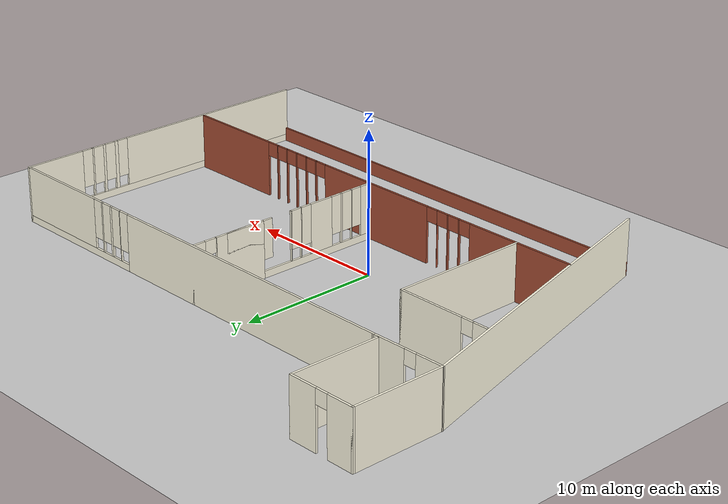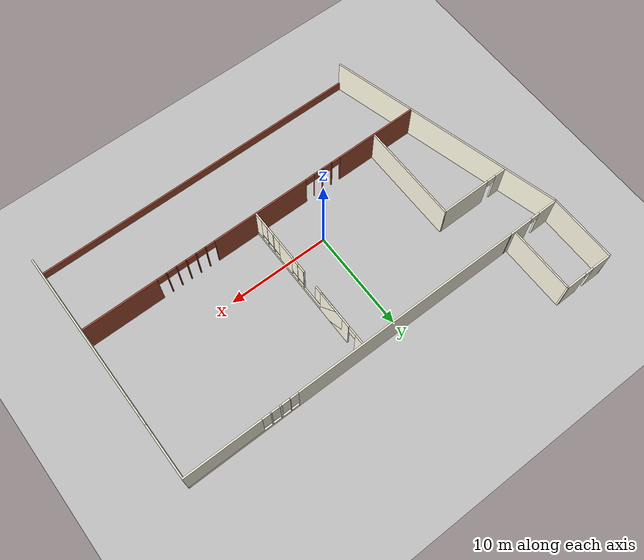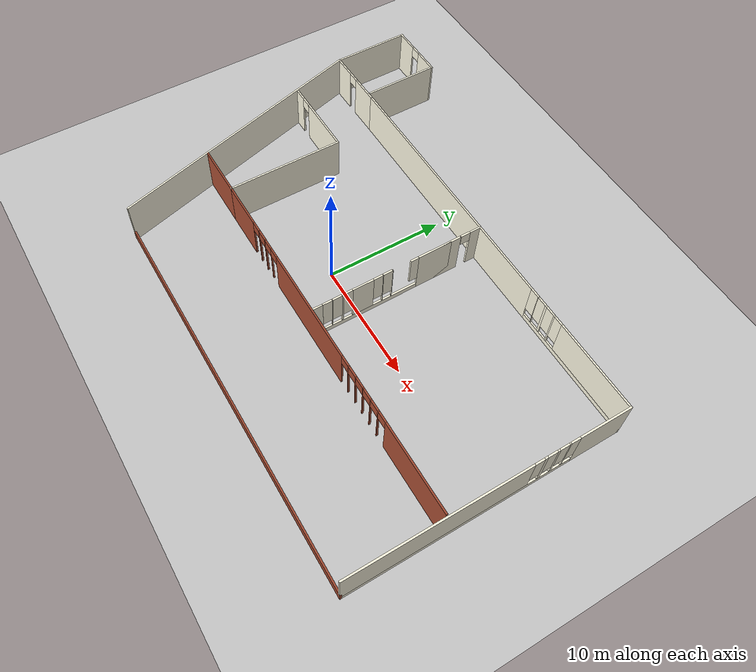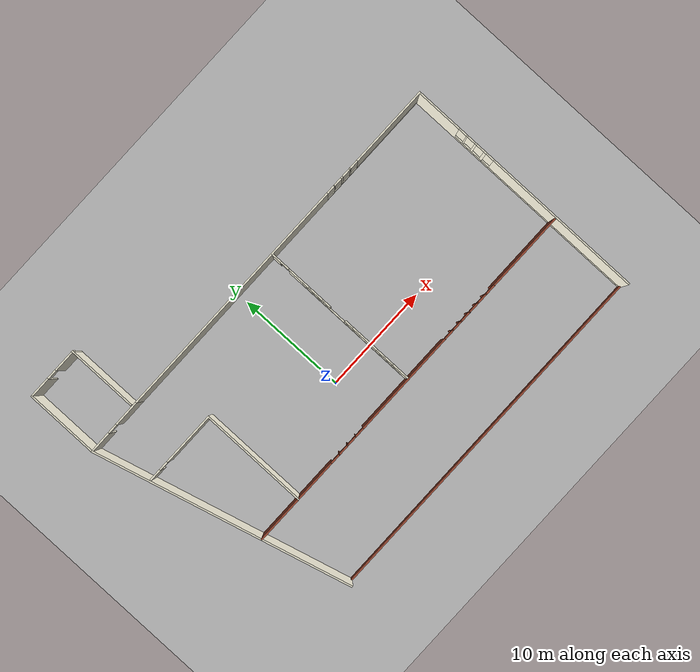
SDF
<sdf version="1.6">
 <world name="default">
  <model name="ground_plane">
   <static>1</static>
   <link name="link">
    <collision name="collision">
     <geometry><plane><normal>0 0 1</normal><size>100 100</size></plane></geometry>
     <surface><friction><ode><mu>100</mu><mu2>50</mu2></ode></friction></surface>
    </collision>
    <visual name="visual">
     <cast_shadows>0</cast_shadows>
     <geometry><plane><normal>0 0 1</normal><size>100 100</size></plane></geometry>
     <material>
      <script><uri>file://media/materials/scripts/gazebo.material</uri><name>Gazebo/Grey</name></script>
     </material>
    </visual>
   </link>
  </model>
  <model name="myoffice">
   <pose>2.27474 2.6943 0.029402 0 -0 0</pose>
   <link name="Wall_0">
    <pose>2.68742 8.1604 0 0 -0 0</pose>
    <visual name="Wall_0_Visual_0">
     <pose>-5.55834 0 2 0 -0 0</pose>
     <geometry><box><size>22.8833 0.15 4</size></box></geometry>
     <material>
      <script><uri>file://media/materials/scripts/gazebo.material</uri><name>Gazebo/Grey</name></script>
      <ambient>1 0.980392 0.894118 1</ambient>
     </material>
     <meta><layer>0</layer></meta>
    </visual>
    <collision name="Wall_0_Collision_0">
     <geometry><box><size>22.8833 0.15 4</size></box></geometry>
     <pose>-5.55834 0 2 0 -0 0</pose>
    </collision>
    <visual name="Wall_0_Visual_1">
     <pose>11.4417 0 0.25 0 -0 0</pose>
     <geometry><box><size>11.1167 0.15 0.5</size></box></geometry>
     <material>
      <script><uri>file://media/materials/scripts/gazebo.material</uri><name>Gazebo/Grey</name></script>
      <ambient>1 0.980392 0.894118 1</ambient>
     </material>
     <meta><layer>0</layer></meta>
    </visual>
    <collision name="Wall_0_Collision_1">
     <geometry><box><size>11.1167 0.15 0.5</size></box></geometry>
     <pose>11.4417 0 0.25 0 -0 0</pose>
    </collision>
    <visual name="Wall_0_Visual_2">
     <pose>6.70786 0 2.25 0 -0 0</pose>
     <geometry><box><size>0.049085 0.15 3.5</size></box></geometry>
     <material>
      <script><uri>file://media/materials/scripts/gazebo.material</uri><name>Gazebo/Grey</name></script>
      <ambient>1 0.980392 0.894118 1</ambient>
     </material>
     <meta><layer>0</layer></meta>
    </visual>
    <collision name="Wall_0_Collision_2">
     <geometry><box><size>0.049085 0.15 3.5</size></box></geometry>
     <pose>6.70786 0 2.25 0 -0 0</pose>
    </collision>
    <visual name="Wall_0_Visual_3">
     <pose>7.6277 0 2.25 0 -0 0</pose>
     <geometry><box><size>0.190599 0.15 3.5</size></box></geometry>
     <material>
      <script><uri>file://media/materials/scripts/gazebo.material</uri><name>Gazebo/Grey</name></script>
      <ambient>1 0.980392 0.894118 1</ambient>
     </material>
     <meta><layer>0</layer></meta>
    </visual>
    <collision name="Wall_0_Collision_3">
     <geometry><box><size>0.190599 0.15 3.5</size></box></geometry>
     <pose>7.6277 0 2.25 0 -0 0</pose>
    </collision>
    <visual name="Wall_0_Visual_4">
     <pose>8.58292 0 2.25 0 -0 0</pose>
     <geometry><box><size>0.119842 0.15 3.5</size></box></geometry>
     <material>
      <script><uri>file://media/materials/scripts/gazebo.material</uri><name>Gazebo/Grey</name></script>
      <ambient>1 0.980392 0.894118 1</ambient>
     </material>
     <meta><layer>0</layer></meta>
    </visual>
    <collision name="Wall_0_Collision_4">
     <geometry><box><size>0.119842 0.15 3.5</size></box></geometry>
     <pose>8.58292 0 2.25 0 -0 0</pose>
    </collision>
    <visual name="Wall_0_Visual_5">
     <pose>13.2214 0 2.25 0 -0 0</pose>
     <geometry><box><size>7.55716 0.15 3.5</size></box></geometry>
     <material>
      <script><uri>file://media/materials/scripts/gazebo.material</uri><name>Gazebo/Grey</name></script>
      <ambient>1 0.980392 0.894118 1</ambient>
     </material>
     <meta><layer>0</layer></meta>
    </visual>
    <collision name="Wall_0_Collision_5">
     <geometry><box><size>7.55716 0.15 3.5</size></box></geometry>
     <pose>13.2214 0 2.25 0 -0 0</pose>
    </collision>
    <visual name="Wall_0_Visual_6">
     <pose>6.28331 0 2.65 0 -0 0</pose>
     <geometry><box><size>0.8 0.15 2.7</size></box></geometry>
     <material>
      <script><uri>file://media/materials/scripts/gazebo.material</uri><name>Gazebo/Grey</name></script>
      <ambient>1 0.980392 0.894118 1</ambient>
     </material>
     <meta><layer>0</layer></meta>
    </visual>
    <collision name="Wall_0_Collision_6">
     <geometry><box><size>0.8 0.15 2.7</size></box></geometry>
     <pose>6.28331 0 2.65 0 -0 0</pose>
    </collision>
    <visual name="Wall_0_Visual_7">
     <pose>7.1324 0 2.65 0 -0 0</pose>
     <geometry><box><size>0.8 0.15 2.7</size></box></geometry>
     <material>
      <script><uri>file://media/materials/scripts/gazebo.material</uri><name>Gazebo/Grey</name></script>
      <ambient>1 0.980392 0.894118 1</ambient>
     </material>
     <meta><layer>0</layer></meta>
    </visual>
    <collision name="Wall_0_Collision_7">
     <geometry><box><size>0.8 0.15 2.7</size></box></geometry>
     <pose>7.1324 0 2.65 0 -0 0</pose>
    </collision>
    <visual name="Wall_0_Visual_8">
     <pose>8.123 0 2.65 0 -0 0</pose>
     <geometry><box><size>0.8 0.15 2.7</size></box></geometry>
     <material>
      <script><uri>file://media/materials/scripts/gazebo.material</uri><name>Gazebo/Grey</name></script>
      <ambient>1 0.980392 0.894118 1</ambient>
     </material>
     <meta><layer>0</layer></meta>
    </visual>
    <collision name="Wall_0_Collision_8">
     <geometry><box><size>0.8 0.15 2.7</size></box></geometry>
     <pose>8.123 0 2.65 0 -0 0</pose>
    </collision>
    <visual name="Wall_0_Visual_9">
     <pose>9.04284 0 2.65 0 -0 0</pose>
     <geometry><box><size>0.8 0.15 2.7</size></box></geometry>
     <material>
      <script><uri>file://media/materials/scripts/gazebo.material</uri><name>Gazebo/Grey</name></script>
      <ambient>1 0.980392 0.894118 1</ambient>
     </material>
     <meta><layer>0</layer></meta>
    </visual>
    <collision name="Wall_0_Collision_9">
     <geometry><box><size>0.8 0.15 2.7</size></box></geometry>
     <pose>9.04284 0 2.65 0 -0 0</pose>
    </collision>
   </link>
   <link name="Wall_1">
    <pose>19.6124 -3.2646 0 0 0 -1.5708</pose>
    <visual name="Wall_1_Visual_0">
     <pose>-9.29214 0 2 0 -0 0</pose>
     <geometry><box><size>4.41572 0.15 4</size></box></geometry>
     <material>
      <script><uri>file://media/materials/scripts/gazebo.material</uri><name>Gazebo/Grey</name></script>
      <ambient>1 0.980392 0.894118 1</ambient>
     </material>
     <meta><layer>0</layer></meta>
    </visual>
    <collision name="Wall_1_Collision_0">
     <geometry><box><size>4.41572 0.15 4</size></box></geometry>
     <pose>-9.29214 0 2 0 -0 0</pose>
    </collision>
    <visual name="Wall_1_Visual_1">
     <pose>2.20786 0 0.25 0 -0 0</pose>
     <geometry><box><size>18.5843 0.15 0.5</size></box></geometry>
     <material>
      <script><uri>file://media/materials/scripts/gazebo.material</uri><name>Gazebo/Grey</name></script>
      <ambient>1 0.980392 0.894118 1</ambient>
     </material>
     <meta><layer>0</layer></meta>
    </visual>
    <collision name="Wall_1_Collision_1">
     <geometry><box><size>18.5843 0.15 0.5</size></box></geometry>
     <pose>2.20786 0 0.25 0 -0 0</pose>
    </collision>
    <visual name="Wall_1_Visual_2">
     <pose>-6.22436 0 2.25 0 -0 0</pose>
     <geometry><box><size>0.119842 0.15 3.5</size></box></geometry>
     <material>
      <script><uri>file://media/materials/scripts/gazebo.material</uri><name>Gazebo/Grey</name></script>
      <ambient>1 0.980392 0.894118 1</ambient>
     </material>
     <meta><layer>0</layer></meta>
    </visual>
    <collision name="Wall_1_Collision_2">
     <geometry><box><size>0.119842 0.15 3.5</size></box></geometry>
     <pose>-6.22436 0 2.25 0 -0 0</pose>
    </collision>
    <visual name="Wall_1_Visual_3">
     <pose>-5.26914 0 2.25 0 -0 0</pose>
     <geometry><box><size>0.190599 0.15 3.5</size></box></geometry>
     <material>
      <script><uri>file://media/materials/scripts/gazebo.material</uri><name>Gazebo/Grey</name></script>
      <ambient>1 0.980392 0.894118 1</ambient>
     </material>
     <meta><layer>0</layer></meta>
    </visual>
    <collision name="Wall_1_Collision_3">
     <geometry><box><size>0.190599 0.15 3.5</size></box></geometry>
     <pose>-5.26914 0 2.25 0 -0 0</pose>
    </collision>
    <visual name="Wall_1_Visual_4">
     <pose>-4.24316 0 2.25 0 -0 0</pose>
     <geometry><box><size>0.261356 0.15 3.5</size></box></geometry>
     <material>
      <script><uri>file://media/materials/scripts/gazebo.material</uri><name>Gazebo/Grey</name></script>
      <ambient>1 0.980392 0.894118 1</ambient>
     </material>
     <meta><layer>0</layer></meta>
    </visual>
    <collision name="Wall_1_Collision_4">
     <geometry><box><size>0.261356 0.15 3.5</size></box></geometry>
     <pose>-4.24316 0 2.25 0 -0 0</pose>
    </collision>
    <visual name="Wall_1_Visual_5">
     <pose>4.09376 0 2.25 0 -0 0</pose>
     <geometry><box><size>14.8125 0.15 3.5</size></box></geometry>
     <material>
      <script><uri>file://media/materials/scripts/gazebo.material</uri><name>Gazebo/Grey</name></script>
      <ambient>1 0.980392 0.894118 1</ambient>
     </material>
     <meta><layer>0</layer></meta>
    </visual>
    <collision name="Wall_1_Collision_5">
     <geometry><box><size>14.8125 0.15 3.5</size></box></geometry>
     <pose>4.09376 0 2.25 0 -0 0</pose>
    </collision>
    <visual name="Wall_1_Visual_6">
     <pose>-6.68428 0 2.65 0 -0 0</pose>
     <geometry><box><size>0.8 0.15 2.7</size></box></geometry>
     <material>
      <script><uri>file://media/materials/scripts/gazebo.material</uri><name>Gazebo/Grey</name></script>
      <ambient>1 0.980392 0.894118 1</ambient>
     </material>
     <meta><layer>0</layer></meta>
    </visual>
    <collision name="Wall_1_Collision_6">
     <geometry><box><size>0.8 0.15 2.7</size></box></geometry>
     <pose>-6.68428 0 2.65 0 -0 0</pose>
    </collision>
    <visual name="Wall_1_Visual_7">
     <pose>-5.76444 0 2.65 0 -0 0</pose>
     <geometry><box><size>0.8 0.15 2.7</size></box></geometry>
     <material>
      <script><uri>file://media/materials/scripts/gazebo.material</uri><name>Gazebo/Grey</name></script>
      <ambient>1 0.980392 0.894118 1</ambient>
     </material>
     <meta><layer>0</layer></meta>
    </visual>
    <collision name="Wall_1_Collision_7">
     <geometry><box><size>0.8 0.15 2.7</size></box></geometry>
     <pose>-5.76444 0 2.65 0 -0 0</pose>
    </collision>
    <visual name="Wall_1_Visual_8">
     <pose>-4.77384 0 2.65 0 -0 0</pose>
     <geometry><box><size>0.8 0.15 2.7</size></box></geometry>
     <material>
      <script><uri>file://media/materials/scripts/gazebo.material</uri><name>Gazebo/Grey</name></script>
      <ambient>1 0.980392 0.894118 1</ambient>
     </material>
     <meta><layer>0</layer></meta>
    </visual>
    <collision name="Wall_1_Collision_8">
     <geometry><box><size>0.8 0.15 2.7</size></box></geometry>
     <pose>-4.77384 0 2.65 0 -0 0</pose>
    </collision>
    <visual name="Wall_1_Visual_9">
     <pose>-3.71248 0 2.65 0 -0 0</pose>
     <geometry><box><size>0.8 0.15 2.7</size></box></geometry>
     <material>
      <script><uri>file://media/materials/scripts/gazebo.material</uri><name>Gazebo/Grey</name></script>
      <ambient>1 0.980392 0.894118 1</ambient>
     </material>
     <meta><layer>0</layer></meta>
    </visual>
    <collision name="Wall_1_Collision_9">
     <geometry><box><size>0.8 0.15 2.7</size></box></geometry>
     <pose>-3.71248 0 2.65 0 -0 0</pose>
    </collision>
   </link>
   <link name="Wall_11">
    <pose>-14.6336 3.0664 0 0 -0 0</pose>
    <visual name="Wall_11_Visual_0">
     <pose>-2.94452 0 2 0 -0 0</pose>
     <geometry><box><size>1.11096 0.15 4</size></box></geometry>
     <material>
      <script><uri>file://media/materials/scripts/gazebo.material</uri><name>Gazebo/Grey</name></script>
      <ambient>1 0.980392 0.894118 1</ambient>
     </material>
     <meta><layer>0</layer></meta>
    </visual>
    <collision name="Wall_11_Collision_0">
     <geometry><box><size>1.11096 0.15 4</size></box></geometry>
     <pose>-2.94452 0 2 0 -0 0</pose>
    </collision>
    <visual name="Wall_11_Visual_1">
     <pose>1.00548 0 2 0 -0 0</pose>
     <geometry><box><size>4.98904 0.15 4</size></box></geometry>
     <material>
      <script><uri>file://media/materials/scripts/gazebo.material</uri><name>Gazebo/Grey</name></script>
      <ambient>1 0.980392 0.894118 1</ambient>
     </material>
     <meta><layer>0</layer></meta>
    </visual>
    <collision name="Wall_11_Collision_1">
     <geometry><box><size>4.98904 0.15 4</size></box></geometry>
     <pose>1.00548 0 2 0 -0 0</pose>
    </collision>
    <visual name="Wall_11_Visual_2">
     <pose>-1.93904 0 3.5 0 -0 0</pose>
     <geometry><box><size>0.9 0.15 1</size></box></geometry>
     <material>
      <script><uri>file://media/materials/scripts/gazebo.material</uri><name>Gazebo/Grey</name></script>
      <ambient>1 0.980392 0.894118 1</ambient>
     </material>
     <meta><layer>0</layer></meta>
    </visual>
    <collision name="Wall_11_Collision_2">
     <geometry><box><size>0.9 0.15 1</size></box></geometry>
     <pose>-1.93904 0 3.5 0 -0 0</pose>
    </collision>
   </link>
   <link name="Wall_12">
    <collision name="Wall_12_Collision">
     <geometry><box><size>10 0.15 4</size></box></geometry>
     <pose>0 0 2 0 -0 0</pose>
    </collision>
    <visual name="Wall_12_Visual">
     <pose>0 0 2 0 -0 0</pose>
     <geometry><box><size>10 0.15 4</size></box></geometry>
     <material>
      <script><uri>file://media/materials/scripts/gazebo.material</uri><name>Gazebo/Grey</name></script>
      <ambient>1 0.980392 0.894118 1</ambient>
     </material>
     <meta><layer>0</layer></meta>
    </visual>
    <pose>-11.2086 -1.8586 0 0 0 -1.5708</pose>
   </link>
   <link name="Wall_13">
    <collision name="Wall_13_Collision">
     <geometry><box><size>4.5 0.15 4</size></box></geometry>
     <pose>0 0 2 0 -0 0</pose>
    </collision>
    <visual name="Wall_13_Visual">
     <pose>0 0 2 0 -0 0</pose>
     <geometry><box><size>4.5 0.15 4</size></box></geometry>
     <material>
      <script><uri>file://media/materials/scripts/gazebo.material</uri><name>Gazebo/Bricks</name></script>
      <ambient>1 0.980392 0.894118 1</ambient>
     </material>
     <meta><layer>0</layer></meta>
    </visual>
    <pose>-13.3836 -6.7836 0 0 -0 3.14159</pose>
   </link>
   <link name="Wall_15">
    <pose>4.09142 -6.7836 0 0 -0 0</pose>
    <visual name="Wall_15_Visual_0">
     <pose>-13.3623 0 2 0 -0 0</pose>
     <geometry><box><size>4.02537 0.15 4</size></box></geometry>
     <material>
      <script><uri>file://media/materials/scripts/gazebo.material</uri><name>Gazebo/Bricks</name></script>
      <ambient>1 0.980392 0.894118 1</ambient>
     </material>
     <meta><layer>0</layer></meta>
    </visual>
    <collision name="Wall_15_Collision_0">
     <geometry><box><size>4.02537 0.15 4</size></box></geometry>
     <pose>-13.3623 0 2 0 -0 0</pose>
    </collision>
    <visual name="Wall_15_Visual_1">
     <pose>-10.4043 0 2 0 -0 0</pose>
     <geometry><box><size>0.090664 0.15 4</size></box></geometry>
     <material>
      <script><uri>file://media/materials/scripts/gazebo.material</uri><name>Gazebo/Bricks</name></script>
      <ambient>1 0.980392 0.894118 1</ambient>
     </material>
     <meta><layer>0</layer></meta>
    </visual>
    <collision name="Wall_15_Collision_1">
     <geometry><box><size>0.090664 0.15 4</size></box></geometry>
     <pose>-10.4043 0 2 0 -0 0</pose>
    </collision>
    <visual name="Wall_15_Visual_2">
     <pose>-9.4137 0 2 0 -0 0</pose>
     <geometry><box><size>0.090534 0.15 4</size></box></geometry>
     <material>
      <script><uri>file://media/materials/scripts/gazebo.material</uri><name>Gazebo/Bricks</name></script>
      <ambient>1 0.980392 0.894118 1</ambient>
     </material>
     <meta><layer>0</layer></meta>
    </visual>
    <collision name="Wall_15_Collision_2">
     <geometry><box><size>0.090534 0.15 4</size></box></geometry>
     <pose>-9.4137 0 2 0 -0 0</pose>
    </collision>
    <visual name="Wall_15_Visual_3">
     <pose>-8.45851 0 2 0 -0 0</pose>
     <geometry><box><size>0.019842 0.15 4</size></box></geometry>
     <material>
      <script><uri>file://media/materials/scripts/gazebo.material</uri><name>Gazebo/Bricks</name></script>
      <ambient>1 0.980392 0.894118 1</ambient>
     </material>
     <meta><layer>0</layer></meta>
    </visual>
    <collision name="Wall_15_Collision_3">
     <geometry><box><size>0.019842 0.15 4</size></box></geometry>
     <pose>-8.45851 0 2 0 -0 0</pose>
    </collision>
    <visual name="Wall_15_Visual_4">
     <pose>-2.65643 0 2 0 -0 0</pose>
     <geometry><box><size>9.78432 0.15 4</size></box></geometry>
     <material>
      <script><uri>file://media/materials/scripts/gazebo.material</uri><name>Gazebo/Bricks</name></script>
      <ambient>1 0.980392 0.894118 1</ambient>
     </material>
     <meta><layer>0</layer></meta>
    </visual>
    <collision name="Wall_15_Collision_4">
     <geometry><box><size>9.78432 0.15 4</size></box></geometry>
     <pose>-2.65643 0 2 0 -0 0</pose>
    </collision>
    <visual name="Wall_15_Visual_5">
     <pose>3.18107 0 2 0 -0 0</pose>
     <geometry><box><size>0.090681 0.15 4</size></box></geometry>
     <material>
      <script><uri>file://media/materials/scripts/gazebo.material</uri><name>Gazebo/Bricks</name></script>
      <ambient>1 0.980392 0.894118 1</ambient>
     </material>
     <meta><layer>0</layer></meta>
    </visual>
    <collision name="Wall_15_Collision_5">
     <geometry><box><size>0.090681 0.15 4</size></box></geometry>
     <pose>3.18107 0 2 0 -0 0</pose>
    </collision>
    <visual name="Wall_15_Visual_6">
     <pose>4.17167 0 2 0 -0 0</pose>
     <geometry><box><size>0.090516 0.15 4</size></box></geometry>
     <material>
      <script><uri>file://media/materials/scripts/gazebo.material</uri><name>Gazebo/Bricks</name></script>
      <ambient>1 0.980392 0.894118 1</ambient>
     </material>
     <meta><layer>0</layer></meta>
    </visual>
    <collision name="Wall_15_Collision_6">
     <geometry><box><size>0.090516 0.15 4</size></box></geometry>
     <pose>4.17167 0 2 0 -0 0</pose>
    </collision>
    <visual name="Wall_15_Visual_7">
     <pose>5.16222 0 2 0 -0 0</pose>
     <geometry><box><size>0.090599 0.15 4</size></box></geometry>
     <material>
      <script><uri>file://media/materials/scripts/gazebo.material</uri><name>Gazebo/Bricks</name></script>
      <ambient>1 0.980392 0.894118 1</ambient>
     </material>
     <meta><layer>0</layer></meta>
    </visual>
    <collision name="Wall_15_Collision_7">
     <geometry><box><size>0.090599 0.15 4</size></box></geometry>
     <pose>5.16222 0 2 0 -0 0</pose>
    </collision>
    <visual name="Wall_15_Visual_8">
     <pose>6.15282 0 2 0 -0 0</pose>
     <geometry><box><size>0.090599 0.15 4</size></box></geometry>
     <material>
      <script><uri>file://media/materials/scripts/gazebo.material</uri><name>Gazebo/Bricks</name></script>
      <ambient>1 0.980392 0.894118 1</ambient>
     </material>
     <meta><layer>0</layer></meta>
    </visual>
    <collision name="Wall_15_Collision_8">
     <geometry><box><size>0.090599 0.15 4</size></box></geometry>
     <pose>6.15282 0 2 0 -0 0</pose>
    </collision>
    <visual name="Wall_15_Visual_9">
     <pose>7.14342 0 2 0 -0 0</pose>
     <geometry><box><size>0.090599 0.15 4</size></box></geometry>
     <material>
      <script><uri>file://media/materials/scripts/gazebo.material</uri><name>Gazebo/Bricks</name></script>
      <ambient>1 0.980392 0.894118 1</ambient>
     </material>
     <meta><layer>0</layer></meta>
    </visual>
    <collision name="Wall_15_Collision_9">
     <geometry><box><size>0.090599 0.15 4</size></box></geometry>
     <pose>7.14342 0 2 0 -0 0</pose>
    </collision>
    <visual name="Wall_15_Visual_10">
     <pose>11.7319 0 2 0 -0 0</pose>
     <geometry><box><size>7.28628 0.15 4</size></box></geometry>
     <material>
      <script><uri>file://media/materials/scripts/gazebo.material</uri><name>Gazebo/Bricks</name></script>
      <ambient>1 0.980392 0.894118 1</ambient>
     </material>
     <meta><layer>0</layer></meta>
    </visual>
    <collision name="Wall_15_Collision_10">
     <geometry><box><size>7.28628 0.15 4</size></box></geometry>
     <pose>11.7319 0 2 0 -0 0</pose>
    </collision>
    <visual name="Wall_15_Visual_11">
     <pose>-10.8996 0 3.5 0 -0 0</pose>
     <geometry><box><size>0.9 0.15 1</size></box></geometry>
     <material>
      <script><uri>file://media/materials/scripts/gazebo.material</uri><name>Gazebo/Bricks</name></script>
      <ambient>1 0.980392 0.894118 1</ambient>
     </material>
     <meta><layer>0</layer></meta>
    </visual>
    <collision name="Wall_15_Collision_11">
     <geometry><box><size>0.9 0.15 1</size></box></geometry>
     <pose>-10.8996 0 3.5 0 -0 0</pose>
    </collision>
    <visual name="Wall_15_Visual_12">
     <pose>-9.90897 0 3.5 0 -0 0</pose>
     <geometry><box><size>0.9 0.15 1</size></box></geometry>
     <material>
      <script><uri>file://media/materials/scripts/gazebo.material</uri><name>Gazebo/Bricks</name></script>
      <ambient>1 0.980392 0.894118 1</ambient>
     </material>
     <meta><layer>0</layer></meta>
    </visual>
    <collision name="Wall_15_Collision_12">
     <geometry><box><size>0.9 0.15 1</size></box></geometry>
     <pose>-9.90897 0 3.5 0 -0 0</pose>
    </collision>
    <visual name="Wall_15_Visual_13">
     <pose>-8.91843 0 3.5 0 -0 0</pose>
     <geometry><box><size>0.9 0.15 1</size></box></geometry>
     <material>
      <script><uri>file://media/materials/scripts/gazebo.material</uri><name>Gazebo/Bricks</name></script>
      <ambient>1 0.980392 0.894118 1</ambient>
     </material>
     <meta><layer>0</layer></meta>
    </visual>
    <collision name="Wall_15_Collision_13">
     <geometry><box><size>0.9 0.15 1</size></box></geometry>
     <pose>-8.91843 0 3.5 0 -0 0</pose>
    </collision>
    <visual name="Wall_15_Visual_14">
     <pose>-7.99859 0 3.5 0 -0 0</pose>
     <geometry><box><size>0.9 0.15 1</size></box></geometry>
     <material>
      <script><uri>file://media/materials/scripts/gazebo.material</uri><name>Gazebo/Bricks</name></script>
      <ambient>1 0.980392 0.894118 1</ambient>
     </material>
     <meta><layer>0</layer></meta>
    </visual>
    <collision name="Wall_15_Collision_14">
     <geometry><box><size>0.9 0.15 1</size></box></geometry>
     <pose>-7.99859 0 3.5 0 -0 0</pose>
    </collision>
    <visual name="Wall_15_Visual_15">
     <pose>2.68573 0 3.5 0 -0 0</pose>
     <geometry><box><size>0.9 0.15 1</size></box></geometry>
     <material>
      <script><uri>file://media/materials/scripts/gazebo.material</uri><name>Gazebo/Bricks</name></script>
      <ambient>1 0.980392 0.894118 1</ambient>
     </material>
     <meta><layer>0</layer></meta>
    </visual>
    <collision name="Wall_15_Collision_15">
     <geometry><box><size>0.9 0.15 1</size></box></geometry>
     <pose>2.68573 0 3.5 0 -0 0</pose>
    </collision>
    <visual name="Wall_15_Visual_16">
     <pose>3.67641 0 3.5 0 -0 0</pose>
     <geometry><box><size>0.9 0.15 1</size></box></geometry>
     <material>
      <script><uri>file://media/materials/scripts/gazebo.material</uri><name>Gazebo/Bricks</name></script>
      <ambient>1 0.980392 0.894118 1</ambient>
     </material>
     <meta><layer>0</layer></meta>
    </visual>
    <collision name="Wall_15_Collision_16">
     <geometry><box><size>0.9 0.15 1</size></box></geometry>
     <pose>3.67641 0 3.5 0 -0 0</pose>
    </collision>
    <visual name="Wall_15_Visual_17">
     <pose>4.66692 0 3.5 0 -0 0</pose>
     <geometry><box><size>0.9 0.15 1</size></box></geometry>
     <material>
      <script><uri>file://media/materials/scripts/gazebo.material</uri><name>Gazebo/Bricks</name></script>
      <ambient>1 0.980392 0.894118 1</ambient>
     </material>
     <meta><layer>0</layer></meta>
    </visual>
    <collision name="Wall_15_Collision_17">
     <geometry><box><size>0.9 0.15 1</size></box></geometry>
     <pose>4.66692 0 3.5 0 -0 0</pose>
    </collision>
    <visual name="Wall_15_Visual_18">
     <pose>5.65752 0 3.5 0 -0 0</pose>
     <geometry><box><size>0.9 0.15 1</size></box></geometry>
     <material>
      <script><uri>file://media/materials/scripts/gazebo.material</uri><name>Gazebo/Bricks</name></script>
      <ambient>1 0.980392 0.894118 1</ambient>
     </material>
     <meta><layer>0</layer></meta>
    </visual>
    <collision name="Wall_15_Collision_18">
     <geometry><box><size>0.9 0.15 1</size></box></geometry>
     <pose>5.65752 0 3.5 0 -0 0</pose>
    </collision>
    <visual name="Wall_15_Visual_19">
     <pose>6.64812 0 3.5 0 -0 0</pose>
     <geometry><box><size>0.9 0.15 1</size></box></geometry>
     <material>
      <script><uri>file://media/materials/scripts/gazebo.material</uri><name>Gazebo/Bricks</name></script>
      <ambient>1 0.980392 0.894118 1</ambient>
     </material>
     <meta><layer>0</layer></meta>
    </visual>
    <collision name="Wall_15_Collision_19">
     <geometry><box><size>0.9 0.15 1</size></box></geometry>
     <pose>6.64812 0 3.5 0 -0 0</pose>
    </collision>
    <visual name="Wall_15_Visual_20">
     <pose>7.63872 0 3.5 0 -0 0</pose>
     <geometry><box><size>0.9 0.15 1</size></box></geometry>
     <material>
      <script><uri>file://media/materials/scripts/gazebo.material</uri><name>Gazebo/Bricks</name></script>
      <ambient>1 0.980392 0.894118 1</ambient>
     </material>
     <meta><layer>0</layer></meta>
    </visual>
    <collision name="Wall_15_Collision_20">
     <geometry><box><size>0.9 0.15 1</size></box></geometry>
     <pose>7.63872 0 3.5 0 -0 0</pose>
    </collision>
   </link>
   <link name="Wall_17">
    <pose>1.96542 0.7354 0 0 0 -1.5708</pose>
    <visual name="Wall_17_Visual_0">
     <pose>-6.97993 0 2 0 -0 0</pose>
     <geometry><box><size>1.04014 0.15 4</size></box></geometry>
     <material>
      <script><uri>file://media/materials/scripts/gazebo.material</uri><name>Gazebo/Grey</name></script>
      <ambient>1 0.980392 0.894118 1</ambient>
     </material>
     <meta><layer>0</layer></meta>
    </visual>
    <collision name="Wall_17_Collision_0">
     <geometry><box><size>1.04014 0.15 4</size></box></geometry>
     <pose>-6.97993 0 2 0 -0 0</pose>
    </collision>
    <visual name="Wall_17_Visual_1">
     <pose>-3.64988 0 2 0 -0 0</pose>
     <geometry><box><size>3.81997 0.15 4</size></box></geometry>
     <material>
      <script><uri>file://media/materials/scripts/gazebo.material</uri><name>Gazebo/Grey</name></script>
      <ambient>1 0.980392 0.894118 1</ambient>
     </material>
     <meta><layer>0</layer></meta>
    </visual>
    <collision name="Wall_17_Collision_1">
     <geometry><box><size>3.81997 0.15 4</size></box></geometry>
     <pose>-3.64988 0 2 0 -0 0</pose>
    </collision>
    <visual name="Wall_17_Visual_2">
     <pose>-3.22533 0 2 0 -0 0</pose>
     <geometry><box><size>2.97088 0.15 4</size></box></geometry>
     <material>
      <script><uri>file://media/materials/scripts/gazebo.material</uri><name>Gazebo/Grey</name></script>
      <ambient>1 0.980392 0.894118 1</ambient>
     </material>
     <meta><layer>0</layer></meta>
    </visual>
    <collision name="Wall_17_Collision_2">
     <geometry><box><size>2.97088 0.15 4</size></box></geometry>
     <pose>-3.22533 0 2 0 -0 0</pose>
    </collision>
    <visual name="Wall_17_Visual_3">
     <pose>2.88005 0 0.25 0 -0 0</pose>
     <geometry><box><size>9.23989 0.15 0.5</size></box></geometry>
     <material>
      <script><uri>file://media/materials/scripts/gazebo.material</uri><name>Gazebo/Grey</name></script>
      <ambient>1 0.980392 0.894118 1</ambient>
     </material>
     <meta><layer>0</layer></meta>
    </visual>
    <collision name="Wall_17_Collision_3">
     <geometry><box><size>9.23989 0.15 0.5</size></box></geometry>
     <pose>2.88005 0 0.25 0 -0 0</pose>
    </collision>
    <visual name="Wall_17_Visual_4">
     <pose>2.88005 0 0.25 0 -0 0</pose>
     <geometry><box><size>9.23989 0.15 0.5</size></box></geometry>
     <material>
      <script><uri>file://media/materials/scripts/gazebo.material</uri><name>Gazebo/Grey</name></script>
      <ambient>1 0.980392 0.894118 1</ambient>
     </material>
     <meta><layer>0</layer></meta>
    </visual>
    <collision name="Wall_17_Collision_4">
     <geometry><box><size>9.23989 0.15 0.5</size></box></geometry>
     <pose>2.88005 0 0.25 0 -0 0</pose>
    </collision>
    <visual name="Wall_17_Visual_5">
     <pose>0.570547 0 2.25 0 -0 0</pose>
     <geometry><box><size>0.049085 0.15 3.5</size></box></geometry>
     <material>
      <script><uri>file://media/materials/scripts/gazebo.material</uri><name>Gazebo/Grey</name></script>
      <ambient>1 0.980392 0.894118 1</ambient>
     </material>
     <meta><layer>0</layer></meta>
    </visual>
    <collision name="Wall_17_Collision_5">
     <geometry><box><size>0.049085 0.15 3.5</size></box></geometry>
     <pose>0.570547 0 2.25 0 -0 0</pose>
    </collision>
    <visual name="Wall_17_Visual_6">
     <pose>1.41963 0 2.25 0 -0 0</pose>
     <geometry><box><size>0.049085 0.15 3.5</size></box></geometry>
     <material>
      <script><uri>file://media/materials/scripts/gazebo.material</uri><name>Gazebo/Grey</name></script>
      <ambient>1 0.980392 0.894118 1</ambient>
     </material>
     <meta><layer>0</layer></meta>
    </visual>
    <collision name="Wall_17_Collision_6">
     <geometry><box><size>0.049085 0.15 3.5</size></box></geometry>
     <pose>1.41963 0 2.25 0 -0 0</pose>
    </collision>
    <visual name="Wall_17_Visual_7">
     <pose>3.15318 0 2.25 0 -0 0</pose>
     <geometry><box><size>1.81801 0.15 3.5</size></box></geometry>
     <material>
      <script><uri>file://media/materials/scripts/gazebo.material</uri><name>Gazebo/Grey</name></script>
      <ambient>1 0.980392 0.894118 1</ambient>
     </material>
     <meta><layer>0</layer></meta>
    </visual>
    <collision name="Wall_17_Collision_7">
     <geometry><box><size>1.81801 0.15 3.5</size></box></geometry>
     <pose>3.15318 0 2.25 0 -0 0</pose>
    </collision>
    <visual name="Wall_17_Visual_8">
     <pose>4.92211 0 2.25 0 -0 0</pose>
     <geometry><box><size>0.119842 0.15 3.5</size></box></geometry>
     <material>
      <script><uri>file://media/materials/scripts/gazebo.material</uri><name>Gazebo/Grey</name></script>
      <ambient>1 0.980392 0.894118 1</ambient>
     </material>
     <meta><layer>0</layer></meta>
    </visual>
    <collision name="Wall_17_Collision_8">
     <geometry><box><size>0.119842 0.15 3.5</size></box></geometry>
     <pose>4.92211 0 2.25 0 -0 0</pose>
    </collision>
    <visual name="Wall_17_Visual_9">
     <pose>5.80657 0 2.25 0 -0 0</pose>
     <geometry><box><size>0.049085 0.15 3.5</size></box></geometry>
     <material>
      <script><uri>file://media/materials/scripts/gazebo.material</uri><name>Gazebo/Grey</name></script>
      <ambient>1 0.980392 0.894118 1</ambient>
     </material>
     <meta><layer>0</layer></meta>
    </visual>
    <collision name="Wall_17_Collision_9">
     <geometry><box><size>0.049085 0.15 3.5</size></box></geometry>
     <pose>5.80657 0 2.25 0 -0 0</pose>
    </collision>
    <visual name="Wall_17_Visual_10">
     <pose>7.06556 0 2.25 0 -0 0</pose>
     <geometry><box><size>0.868888 0.15 3.5</size></box></geometry>
     <material>
      <script><uri>file://media/materials/scripts/gazebo.material</uri><name>Gazebo/Grey</name></script>
      <ambient>1 0.980392 0.894118 1</ambient>
     </material>
     <meta><layer>0</layer></meta>
    </visual>
    <collision name="Wall_17_Collision_10">
     <geometry><box><size>0.868888 0.15 3.5</size></box></geometry>
     <pose>7.06556 0 2.25 0 -0 0</pose>
    </collision>
    <visual name="Wall_17_Visual_11">
     <pose>0.570547 0 2.25 0 -0 0</pose>
     <geometry><box><size>0.049085 0.15 3.5</size></box></geometry>
     <material>
      <script><uri>file://media/materials/scripts/gazebo.material</uri><name>Gazebo/Grey</name></script>
      <ambient>1 0.980392 0.894118 1</ambient>
     </material>
     <meta><layer>0</layer></meta>
    </visual>
    <collision name="Wall_17_Collision_11">
     <geometry><box><size>0.049085 0.15 3.5</size></box></geometry>
     <pose>0.570547 0 2.25 0 -0 0</pose>
    </collision>
    <visual name="Wall_17_Visual_12">
     <pose>1.41963 0 2.25 0 -0 0</pose>
     <geometry><box><size>0.049085 0.15 3.5</size></box></geometry>
     <material>
      <script><uri>file://media/materials/scripts/gazebo.material</uri><name>Gazebo/Grey</name></script>
      <ambient>1 0.980392 0.894118 1</ambient>
     </material>
     <meta><layer>0</layer></meta>
    </visual>
    <collision name="Wall_17_Collision_12">
     <geometry><box><size>0.049085 0.15 3.5</size></box></geometry>
     <pose>1.41963 0 2.25 0 -0 0</pose>
    </collision>
    <visual name="Wall_17_Visual_13">
     <pose>3.15318 0 2.25 0 -0 0</pose>
     <geometry><box><size>1.81801 0.15 3.5</size></box></geometry>
     <material>
      <script><uri>file://media/materials/scripts/gazebo.material</uri><name>Gazebo/Grey</name></script>
      <ambient>1 0.980392 0.894118 1</ambient>
     </material>
     <meta><layer>0</layer></meta>
    </visual>
    <collision name="Wall_17_Collision_13">
     <geometry><box><size>1.81801 0.15 3.5</size></box></geometry>
     <pose>3.15318 0 2.25 0 -0 0</pose>
    </collision>
    <visual name="Wall_17_Visual_14">
     <pose>4.92211 0 2.25 0 -0 0</pose>
     <geometry><box><size>0.119842 0.15 3.5</size></box></geometry>
     <material>
      <script><uri>file://media/materials/scripts/gazebo.material</uri><name>Gazebo/Grey</name></script>
      <ambient>1 0.980392 0.894118 1</ambient>
     </material>
     <meta><layer>0</layer></meta>
    </visual>
    <collision name="Wall_17_Collision_14">
     <geometry><box><size>0.119842 0.15 3.5</size></box></geometry>
     <pose>4.92211 0 2.25 0 -0 0</pose>
    </collision>
    <visual name="Wall_17_Visual_15">
     <pose>5.80657 0 2.25 0 -0 0</pose>
     <geometry><box><size>0.049085 0.15 3.5</size></box></geometry>
     <material>
      <script><uri>file://media/materials/scripts/gazebo.material</uri><name>Gazebo/Grey</name></script>
      <ambient>1 0.980392 0.894118 1</ambient>
     </material>
     <meta><layer>0</layer></meta>
    </visual>
    <collision name="Wall_17_Collision_15">
     <geometry><box><size>0.049085 0.15 3.5</size></box></geometry>
     <pose>5.80657 0 2.25 0 -0 0</pose>
    </collision>
    <visual name="Wall_17_Visual_16">
     <pose>7.06556 0 2.25 0 -0 0</pose>
     <geometry><box><size>0.868888 0.15 3.5</size></box></geometry>
     <material>
      <script><uri>file://media/materials/scripts/gazebo.material</uri><name>Gazebo/Grey</name></script>
      <ambient>1 0.980392 0.894118 1</ambient>
     </material>
     <meta><layer>0</layer></meta>
    </visual>
    <collision name="Wall_17_Collision_16">
     <geometry><box><size>0.868888 0.15 3.5</size></box></geometry>
     <pose>7.06556 0 2.25 0 -0 0</pose>
    </collision>
    <visual name="Wall_17_Visual_17">
     <pose>-1.38592 0 2.65 0 -0 0</pose>
     <geometry><box><size>0.707939 0.15 2.7</size></box></geometry>
     <material>
      <script><uri>file://media/materials/scripts/gazebo.material</uri><name>Gazebo/Grey</name></script>
      <ambient>1 0.980392 0.894118 1</ambient>
     </material>
     <meta><layer>0</layer></meta>
    </visual>
    <collision name="Wall_17_Collision_17">
     <geometry><box><size>0.707939 0.15 2.7</size></box></geometry>
     <pose>-1.38592 0 2.65 0 -0 0</pose>
    </collision>
    <visual name="Wall_17_Visual_18">
     <pose>-1.38592 0 2.65 0 -0 0</pose>
     <geometry><box><size>0.707939 0.15 2.7</size></box></geometry>
     <material>
      <script><uri>file://media/materials/scripts/gazebo.material</uri><name>Gazebo/Grey</name></script>
      <ambient>1 0.980392 0.894118 1</ambient>
     </material>
     <meta><layer>0</layer></meta>
    </visual>
    <collision name="Wall_17_Collision_18">
     <geometry><box><size>0.707939 0.15 2.7</size></box></geometry>
     <pose>-1.38592 0 2.65 0 -0 0</pose>
    </collision>
    <visual name="Wall_17_Visual_19">
     <pose>0.99509 0 2.65 0 -0 0</pose>
     <geometry><box><size>0.8 0.15 2.7</size></box></geometry>
     <material>
      <script><uri>file://media/materials/scripts/gazebo.material</uri><name>Gazebo/Grey</name></script>
      <ambient>1 0.980392 0.894118 1</ambient>
     </material>
     <meta><layer>0</layer></meta>
    </visual>
    <collision name="Wall_17_Collision_19">
     <geometry><box><size>0.8 0.15 2.7</size></box></geometry>
     <pose>0.99509 0 2.65 0 -0 0</pose>
    </collision>
    <visual name="Wall_17_Visual_20">
     <pose>1.84417 0 2.65 0 -0 0</pose>
     <geometry><box><size>0.8 0.15 2.7</size></box></geometry>
     <material>
      <script><uri>file://media/materials/scripts/gazebo.material</uri><name>Gazebo/Grey</name></script>
      <ambient>1 0.980392 0.894118 1</ambient>
     </material>
     <meta><layer>0</layer></meta>
    </visual>
    <collision name="Wall_17_Collision_20">
     <geometry><box><size>0.8 0.15 2.7</size></box></geometry>
     <pose>1.84417 0 2.65 0 -0 0</pose>
    </collision>
    <visual name="Wall_17_Visual_21">
     <pose>4.46219 0 2.65 0 -0 0</pose>
     <geometry><box><size>0.8 0.15 2.7</size></box></geometry>
     <material>
      <script><uri>file://media/materials/scripts/gazebo.material</uri><name>Gazebo/Grey</name></script>
      <ambient>1 0.980392 0.894118 1</ambient>
     </material>
     <meta><layer>0</layer></meta>
    </visual>
    <collision name="Wall_17_Collision_21">
     <geometry><box><size>0.8 0.15 2.7</size></box></geometry>
     <pose>4.46219 0 2.65 0 -0 0</pose>
    </collision>
    <visual name="Wall_17_Visual_22">
     <pose>5.38203 0 2.65 0 -0 0</pose>
     <geometry><box><size>0.8 0.15 2.7</size></box></geometry>
     <material>
      <script><uri>file://media/materials/scripts/gazebo.material</uri><name>Gazebo/Grey</name></script>
      <ambient>1 0.980392 0.894118 1</ambient>
     </material>
     <meta><layer>0</layer></meta>
    </visual>
    <collision name="Wall_17_Collision_22">
     <geometry><box><size>0.8 0.15 2.7</size></box></geometry>
     <pose>5.38203 0 2.65 0 -0 0</pose>
    </collision>
    <visual name="Wall_17_Visual_23">
     <pose>6.23111 0 2.65 0 -0 0</pose>
     <geometry><box><size>0.8 0.15 2.7</size></box></geometry>
     <material>
      <script><uri>file://media/materials/scripts/gazebo.material</uri><name>Gazebo/Grey</name></script>
      <ambient>1 0.980392 0.894118 1</ambient>
     </material>
     <meta><layer>0</layer></meta>
    </visual>
    <collision name="Wall_17_Collision_23">
     <geometry><box><size>0.8 0.15 2.7</size></box></geometry>
     <pose>6.23111 0 2.65 0 -0 0</pose>
    </collision>
    <visual name="Wall_17_Visual_24">
     <pose>0.99509 0 2.65 0 -0 0</pose>
     <geometry><box><size>0.8 0.15 2.7</size></box></geometry>
     <material>
      <script><uri>file://media/materials/scripts/gazebo.material</uri><name>Gazebo/Grey</name></script>
      <ambient>1 0.980392 0.894118 1</ambient>
     </material>
     <meta><layer>0</layer></meta>
    </visual>
    <collision name="Wall_17_Collision_24">
     <geometry><box><size>0.8 0.15 2.7</size></box></geometry>
     <pose>0.99509 0 2.65 0 -0 0</pose>
    </collision>
    <visual name="Wall_17_Visual_25">
     <pose>1.84417 0 2.65 0 -0 0</pose>
     <geometry><box><size>0.8 0.15 2.7</size></box></geometry>
     <material>
      <script><uri>file://media/materials/scripts/gazebo.material</uri><name>Gazebo/Grey</name></script>
      <ambient>1 0.980392 0.894118 1</ambient>
     </material>
     <meta><layer>0</layer></meta>
    </visual>
    <collision name="Wall_17_Collision_25">
     <geometry><box><size>0.8 0.15 2.7</size></box></geometry>
     <pose>1.84417 0 2.65 0 -0 0</pose>
    </collision>
    <visual name="Wall_17_Visual_26">
     <pose>4.46219 0 2.65 0 -0 0</pose>
     <geometry><box><size>0.8 0.15 2.7</size></box></geometry>
     <material>
      <script><uri>file://media/materials/scripts/gazebo.material</uri><name>Gazebo/Grey</name></script>
      <ambient>1 0.980392 0.894118 1</ambient>
     </material>
     <meta><layer>0</layer></meta>
    </visual>
    <collision name="Wall_17_Collision_26">
     <geometry><box><size>0.8 0.15 2.7</size></box></geometry>
     <pose>4.46219 0 2.65 0 -0 0</pose>
    </collision>
    <visual name="Wall_17_Visual_27">
     <pose>5.38203 0 2.65 0 -0 0</pose>
     <geometry><box><size>0.8 0.15 2.7</size></box></geometry>
     <material>
      <script><uri>file://media/materials/scripts/gazebo.material</uri><name>Gazebo/Grey</name></script>
      <ambient>1 0.980392 0.894118 1</ambient>
     </material>
     <meta><layer>0</layer></meta>
    </visual>
    <collision name="Wall_17_Collision_27">
     <geometry><box><size>0.8 0.15 2.7</size></box></geometry>
     <pose>5.38203 0 2.65 0 -0 0</pose>
    </collision>
    <visual name="Wall_17_Visual_28">
     <pose>6.23111 0 2.65 0 -0 0</pose>
     <geometry><box><size>0.8 0.15 2.7</size></box></geometry>
     <material>
      <script><uri>file://media/materials/scripts/gazebo.material</uri><name>Gazebo/Grey</name></script>
      <ambient>1 0.980392 0.894118 1</ambient>
     </material>
     <meta><layer>0</layer></meta>
    </visual>
    <collision name="Wall_17_Collision_28">
     <geometry><box><size>0.8 0.15 2.7</size></box></geometry>
     <pose>6.23111 0 2.65 0 -0 0</pose>
    </collision>
    <visual name="Wall_17_Visual_29">
     <pose>-6.03532 0 3.5 0 -0 0</pose>
     <geometry><box><size>0.849085 0.15 1</size></box></geometry>
     <material>
      <script><uri>file://media/materials/scripts/gazebo.material</uri><name>Gazebo/Grey</name></script>
      <ambient>1 0.980392 0.894118 1</ambient>
     </material>
     <meta><layer>0</layer></meta>
    </visual>
    <collision name="Wall_17_Collision_29">
     <geometry><box><size>0.849085 0.15 1</size></box></geometry>
     <pose>-6.03532 0 3.5 0 -0 0</pose>
    </collision>
   </link>
   <link name="Wall_2">
    <collision name="Wall_2_Collision">
     <geometry><box><size>33.25 0.15 1</size></box></geometry>
     <pose>0 0 0.5 0 -0 0</pose>
    </collision>
    <visual name="Wall_2_Visual">
     <pose>0 0 0.5 0 -0 0</pose>
     <geometry><box><size>33.25 0.15 1</size></box></geometry>
     <material>
      <script><uri>file://media/materials/scripts/gazebo.material</uri><name>Gazebo/Bricks</name></script>
      <ambient>1 0.980392 0.894118 1</ambient>
     </material>
     <meta><layer>0</layer></meta>
    </visual>
    <pose>3.06242 -14.6896 0 0 -0 3.14159</pose>
   </link>
   <link name="Wall_21">
    <pose>-16.9166 8.1334 0 0 0 -3.13151</pose>
    <visual name="Wall_21_Visual_0">
     <pose>-1.49066 0 2 0 -0 0</pose>
     <geometry><box><size>2.52694 0.15 4</size></box></geometry>
     <material>
      <script><uri>file://media/materials/scripts/gazebo.material</uri><name>Gazebo/Grey</name></script>
      <ambient>1 0.980392 0.894118 1</ambient>
     </material>
     <meta><layer>0</layer></meta>
    </visual>
    <collision name="Wall_21_Collision_0">
     <geometry><box><size>2.52694 0.15 4</size></box></geometry>
     <pose>-1.49066 0 2 0 -0 0</pose>
    </collision>
    <visual name="Wall_21_Visual_1">
     <pose>1.71347 0 2 0 -0 0</pose>
     <geometry><box><size>2.08133 0.15 4</size></box></geometry>
     <material>
      <script><uri>file://media/materials/scripts/gazebo.material</uri><name>Gazebo/Grey</name></script>
      <ambient>1 0.980392 0.894118 1</ambient>
     </material>
     <meta><layer>0</layer></meta>
    </visual>
    <collision name="Wall_21_Collision_1">
     <geometry><box><size>2.08133 0.15 4</size></box></geometry>
     <pose>1.71347 0 2 0 -0 0</pose>
    </collision>
    <visual name="Wall_21_Visual_2">
     <pose>0.222807 0 3.5 0 -0 0</pose>
     <geometry><box><size>0.9 0.15 1</size></box></geometry>
     <material>
      <script><uri>file://media/materials/scripts/gazebo.material</uri><name>Gazebo/Grey</name></script>
      <ambient>1 0.980392 0.894118 1</ambient>
     </material>
     <meta><layer>0</layer></meta>
    </visual>
    <collision name="Wall_21_Collision_2">
     <geometry><box><size>0.9 0.15 1</size></box></geometry>
     <pose>0.222807 0 3.5 0 -0 0</pose>
    </collision>
   </link>
   <link name="Wall_3">
    <collision name="Wall_3_Collision">
     <geometry><box><size>23.75 0.15 4</size></box></geometry>
     <pose>0 0 2 0 -0 0</pose>
    </collision>
    <visual name="Wall_3_Visual">
     <pose>0 0 2 0 -0 0</pose>
     <geometry><box><size>23.75 0.15 4</size></box></geometry>
     <material>
      <script><uri>file://media/materials/scripts/gazebo.material</uri><name>Gazebo/Grey</name></script>
      <ambient>1 0.980392 0.894118 1</ambient>
     </material>
     <meta><layer>0</layer></meta>
    </visual>
    <pose>-16.5416 -3.2916 0 0 -0 1.83259</pose>
   </link>
   <link name="Wall_4">
    <collision name="Wall_4_Collision">
     <geometry><box><size>6.75 0.15 4</size></box></geometry>
     <pose>0 0 2 0 -0 0</pose>
    </collision>
    <visual name="Wall_4_Visual">
     <pose>0 0 2 0 -0 0</pose>
     <geometry><box><size>6.75 0.15 4</size></box></geometry>
     <material>
      <script><uri>file://media/materials/scripts/gazebo.material</uri><name>Gazebo/Grey</name></script>
      <ambient>1 0.980392 0.894118 1</ambient>
     </material>
     <meta><layer>0</layer></meta>
    </visual>
    <pose>-19.5956 11.4064 0 0 -0 1.5708</pose>
   </link>
   <link name="Wall_5">
    <pose>-17.1516 14.7064 0 0 -0 0</pose>
    <visual name="Wall_5_Visual_0">
     <pose>-1.51347 0 2 0 -0 0</pose>
     <geometry><box><size>2.01124 0.15 4</size></box></geometry>
     <material>
      <script><uri>file://media/materials/scripts/gazebo.material</uri><name>Gazebo/Grey</name></script>
      <ambient>1 0.980392 0.894118 1</ambient>
     </material>
     <meta><layer>0</layer></meta>
    </visual>
    <collision name="Wall_5_Collision_0">
     <geometry><box><size>2.01124 0.15 4</size></box></geometry>
     <pose>-1.51347 0 2 0 -0 0</pose>
    </collision>
    <visual name="Wall_5_Visual_1">
     <pose>1.45562 0 2 0 -0 0</pose>
     <geometry><box><size>2.12694 0.15 4</size></box></geometry>
     <material>
      <script><uri>file://media/materials/scripts/gazebo.material</uri><name>Gazebo/Grey</name></script>
      <ambient>1 0.980392 0.894118 1</ambient>
     </material>
     <meta><layer>0</layer></meta>
    </visual>
    <collision name="Wall_5_Collision_1">
     <geometry><box><size>2.12694 0.15 4</size></box></geometry>
     <pose>1.45562 0 2 0 -0 0</pose>
    </collision>
    <visual name="Wall_5_Visual_2">
     <pose>-0.057852 0 3.5 0 -0 0</pose>
     <geometry><box><size>0.9 0.15 1</size></box></geometry>
     <material>
      <script><uri>file://media/materials/scripts/gazebo.material</uri><name>Gazebo/Grey</name></script>
      <ambient>1 0.980392 0.894118 1</ambient>
     </material>
     <meta><layer>0</layer></meta>
    </visual>
    <collision name="Wall_5_Collision_2">
     <geometry><box><size>0.9 0.15 1</size></box></geometry>
     <pose>-0.057852 0 3.5 0 -0 0</pose>
    </collision>
   </link>
   <link name="Wall_6">
    <collision name="Wall_6_Collision">
     <geometry><box><size>6.5 0.15 4</size></box></geometry>
     <pose>0 0 2 0 -0 0</pose>
    </collision>
    <visual name="Wall_6_Visual">
     <pose>0 0 2 0 -0 0</pose>
     <geometry><box><size>6.5 0.15 4</size></box></geometry>
     <material>
      <script><uri>file://media/materials/scripts/gazebo.material</uri><name>Gazebo/Grey</name></script>
      <ambient>1 0.980392 0.894118 1</ambient>
     </material>
     <meta><layer>0</layer></meta>
    </visual>
    <pose>-14.7076 11.5314 0 0 0 -1.5708</pose>
   </link>
   <static>1</static>
  </model>
 </world>
</sdf>
